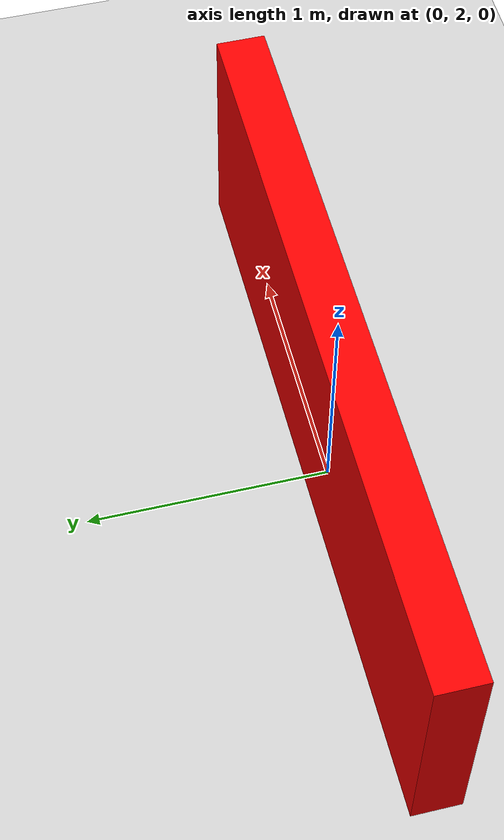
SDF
<?xml version="1.0"?>
<sdf version="1.8">
  <world name="test_world">

    <physics name="1ms" type="ignored">
      <max_step_size>0.001</max_step_size>
      <real_time_factor>1.0</real_time_factor>
    </physics>

    <plugin filename="gz-sim-physics-system" name="gz::sim::systems::Physics"/>
    <plugin filename="gz-sim-user-commands-system" name="gz::sim::systems::UserCommands"/>
    <plugin filename="gz-sim-scene-broadcaster-system" name="gz::sim::systems::SceneBroadcaster"/>
    <plugin filename="gz-sim-sensors-system" name="gz::sim::systems::Sensors">
      <render_engine>ogre2</render_engine>
    </plugin>

    <light type="directional" name="sun">
      <cast_shadows>true</cast_shadows>
      <pose>0 0 10 0 0 0</pose>
      <diffuse>0.8 0.8 0.8 1</diffuse>
      <specular>0.2 0.2 0.2 1</specular>
      <direction>-0.5 0.1 -0.9</direction>
    </light>

    <model name="ground_plane">
      <static>true</static>
      <link name="link">
        <collision name="collision">
          <geometry>
            <plane>
              <normal>0 0 1</normal>
              <size>100 100</size>
            </plane>
          </geometry>
        </collision>
        <visual name="visual">
          <geometry>
            <plane>
              <normal>0 0 1</normal>
              <size>100 100</size>
            </plane>
          </geometry>
          <material>
            <ambient>0.8 0.8 0.8 1</ambient>
            <diffuse>0.8 0.8 0.8 1</diffuse>
          </material>
        </visual>
      </link>
    </model>

    <!-- Big test wall -->
    <model name="test_wall">
      <static>true</static>
      <pose>0 2 0.5 0 0 0</pose>
      <link name="link">
        <collision name="collision">
          <geometry>
            <box><size>3 0.2 1</size></box>
          </geometry>
        </collision>
        <visual name="visual">
          <geometry>
            <box><size>3 0.2 1</size></box>
          </geometry>
          <material>
            <ambient>1 0 0 1</ambient>
            <diffuse>1 0 0 1</diffuse>
          </material>
        </visual>
      </link>
    </model>

  </world>
</sdf>
